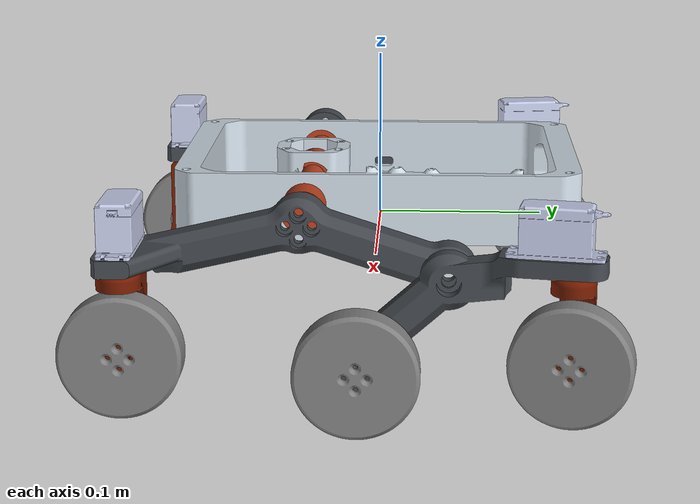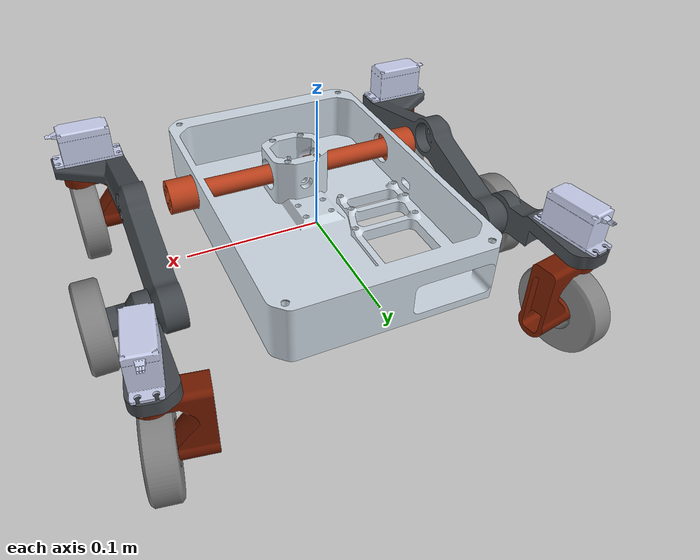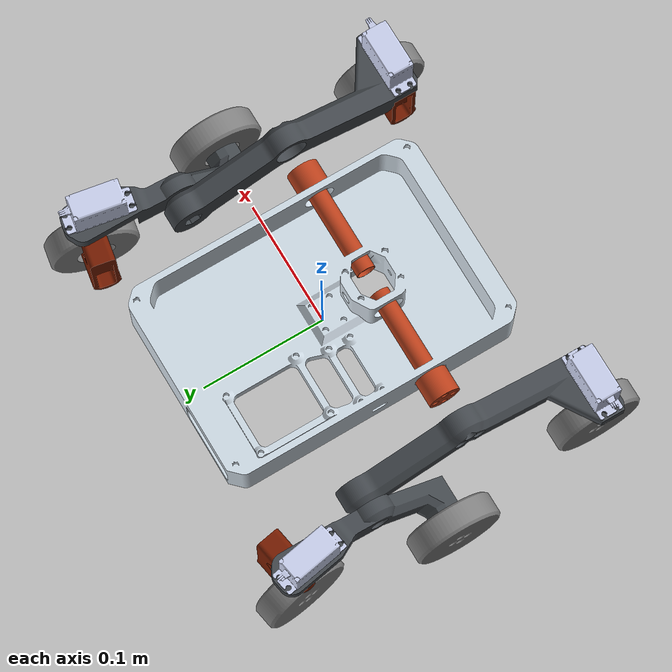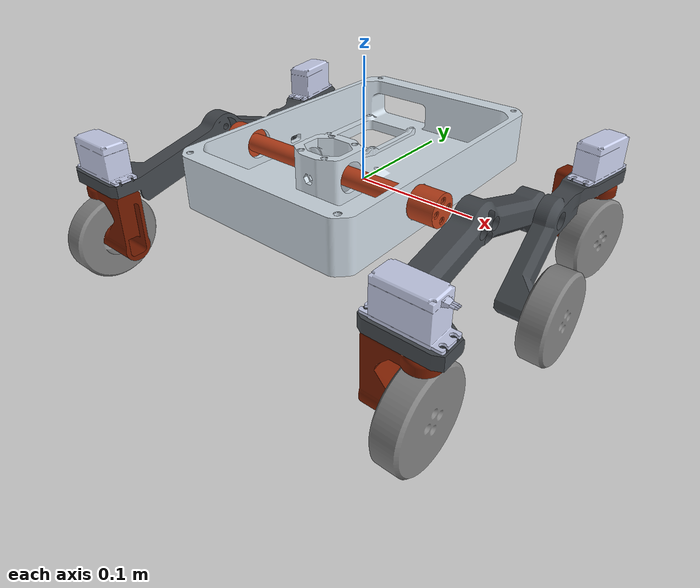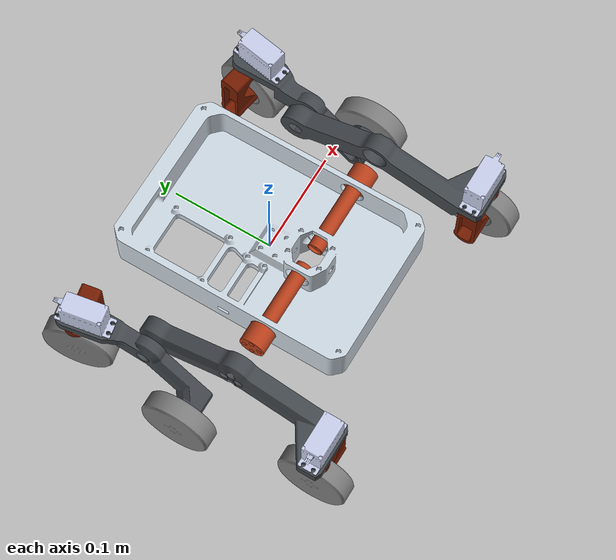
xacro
<?xml version="1.0" ?>
<!-- Generated using onshape-to-robot -->
<!-- Onshape https://cad.onshape.com/documents/31ca51e87164d5a2ae3b11dc/w/1e07aa3f18f08d453ac8b6a1/e/be108145cc25fea61866c58d -->
<robot name="perseverance"
  xmlns:xacro="http://ros.org/wiki/xacro">
  <!-- Link base_link -->
  <link name="base_link">
    <inertial>
      <origin xyz="0.00132088 -0.0106351 0.0110544" rpy="0 0 0"/>
      <mass value="1.16655"/>
      <inertia ixx="0.00718086" ixy="-0.000191247" ixz="-9.44893e-06" iyy="0.00962338" iyz="0.000134967" izz="0.0161498"/>
    </inertial>
    <!-- Part rightbogie -->
    <visual>
      <origin xyz="-0.15 0.0418583 -0.00306575" rpy="0 -0 -1.5708"/>
      <geometry>
        <mesh filename="rightbogie.stl"/>
      </geometry>
      <material name="rightbogie_material">
        <color rgba="0.262745 0.282353 0.301961 1"/>
      </material>
    </visual>
    <collision>
      <origin xyz="-0.15 0.0418583 -0.00306575" rpy="0 -0 -1.5708"/>
      <geometry>
        <mesh filename="rightbogie.stl"/>
      </geometry>
    </collision>
    <!-- Part bevel_0_85m_18t_45deg -->
    <visual>
      <origin xyz="-0.012226 -0.042 0.024" rpy="-0 1.5708 0"/>
      <geometry>
        <mesh filename="bevel_0_85m_18t_45deg.stl"/>
      </geometry>
      <material name="bevel_0_85m_18t_45deg_material">
        <color rgba="0.729412 0.25098 0.105882 1"/>
      </material>
    </visual>
    <collision>
      <origin xyz="-0.012226 -0.042 0.024" rpy="-0 1.5708 0"/>
      <geometry>
        <mesh filename="bevel_0_85m_18t_45deg.stl"/>
      </geometry>
    </collision>
    <!-- Part base_link -->
    <visual>
      <origin xyz="0 0 0" rpy="0 -0 0"/>
      <geometry>
        <mesh filename="base_link.stl"/>
      </geometry>
      <material name="base_link_material">
        <color rgba="0.811765 0.858824 0.898039 1"/>
      </material>
    </visual>
    <collision>
      <origin xyz="0 0 0" rpy="0 -0 0"/>
      <geometry>
        <mesh filename="base_link.stl"/>
      </geometry>
    </collision>
    <!-- Part bevel_0_85m_18t_45deg_2 -->
    <visual>
      <origin xyz="0.012226 -0.042 0.024" rpy="-1.3494e-79 -1.5708 0"/>
      <geometry>
        <mesh filename="bevel_0_85m_18t_45deg.stl"/>
      </geometry>
      <material name="bevel_0_85m_18t_45deg_2_material">
        <color rgba="0.729412 0.25098 0.105882 1"/>
      </material>
    </visual>
    <collision>
      <origin xyz="0.012226 -0.042 0.024" rpy="-1.3494e-79 -1.5708 0"/>
      <geometry>
        <mesh filename="bevel_0_85m_18t_45deg.stl"/>
      </geometry>
    </collision>
    <!-- Part mg995 -->
    <visual>
      <origin xyz="-0.1425 -0.140031 0.043" rpy="3.14159 -0 -3.14159"/>
      <geometry>
        <mesh filename="mg995.stl"/>
      </geometry>
      <material name="mg995_material">
        <color rgba="0.792157 0.819608 0.933333 1"/>
      </material>
    </visual>
    <collision>
      <origin xyz="-0.1425 -0.140031 0.043" rpy="3.14159 -0 -3.14159"/>
      <geometry>
        <mesh filename="mg995.stl"/>
      </geometry>
    </collision>
    <!-- Part mg995_2 -->
    <visual>
      <origin xyz="-0.150764 0.100122 0.0432278" rpy="3.14159 -0 1.74533"/>
      <geometry>
        <mesh filename="mg995.stl"/>
      </geometry>
      <material name="mg995_2_material">
        <color rgba="0.792157 0.819608 0.933333 1"/>
      </material>
    </visual>
    <collision>
      <origin xyz="-0.150764 0.100122 0.0432278" rpy="3.14159 -0 1.74533"/>
      <geometry>
        <mesh filename="mg995.stl"/>
      </geometry>
    </collision>
    <!-- Part mg995_3 -->
    <visual>
      <origin xyz="0.1425 -0.140031 0.043" rpy="3.14159 -0 -2.01228e-16"/>
      <geometry>
        <mesh filename="mg995.stl"/>
      </geometry>
      <material name="mg995_3_material">
        <color rgba="0.792157 0.819608 0.933333 1"/>
      </material>
    </visual>
    <collision>
      <origin xyz="0.1425 -0.140031 0.043" rpy="3.14159 -0 -2.01228e-16"/>
      <geometry>
        <mesh filename="mg995.stl"/>
      </geometry>
    </collision>
    <!-- Part leftrocker -->
    <visual>
      <origin xyz="0.115 -0.042 0.024" rpy="0 -0 -1.5708"/>
      <geometry>
        <mesh filename="leftrocker.stl"/>
      </geometry>
      <material name="leftrocker_material">
        <color rgba="0.262745 0.282353 0.301961 1"/>
      </material>
    </visual>
    <collision>
      <origin xyz="0.115 -0.042 0.024" rpy="0 -0 -1.5708"/>
      <geometry>
        <mesh filename="leftrocker.stl"/>
      </geometry>
    </collision>
    <!-- Part rightrocker -->
    <visual>
      <origin xyz="-0.115 -0.042 0.024" rpy="0 -0 -1.5708"/>
      <geometry>
        <mesh filename="rightrocker.stl"/>
      </geometry>
      <material name="rightrocker_material">
        <color rgba="0.262745 0.282353 0.301961 1"/>
      </material>
    </visual>
    <collision>
      <origin xyz="-0.115 -0.042 0.024" rpy="0 -0 -1.5708"/>
      <geometry>
        <mesh filename="rightrocker.stl"/>
      </geometry>
    </collision>
    <!-- Part mg995_4 -->
    <visual>
      <origin xyz="0.150764 0.100122 0.0432278" rpy="3.14159 -0 1.39626"/>
      <geometry>
        <mesh filename="mg995.stl"/>
      </geometry>
      <material name="mg995_4_material">
        <color rgba="0.792157 0.819608 0.933333 1"/>
      </material>
    </visual>
    <collision>
      <origin xyz="0.150764 0.100122 0.0432278" rpy="3.14159 -0 1.39626"/>
      <geometry>
        <mesh filename="mg995.stl"/>
      </geometry>
    </collision>
    <!-- Part leftbogie -->
    <visual>
      <origin xyz="0.15 0.0418583 -0.00306575" rpy="0 -0 -1.5708"/>
      <geometry>
        <mesh filename="leftbogie.stl"/>
      </geometry>
      <material name="leftbogie_material">
        <color rgba="0.262745 0.282353 0.301961 1"/>
      </material>
    </visual>
    <collision>
      <origin xyz="0.15 0.0418583 -0.00306575" rpy="0 -0 -1.5708"/>
      <geometry>
        <mesh filename="leftbogie.stl"/>
      </geometry>
    </collision>
  </link>
  <!-- Link rearsteeringarm -->
  <link name="rearsteeringarm">
    <inertial>
      <origin xyz="0.0162576 1.99588e-09 -0.0222692" rpy="0 0 0"/>
      <mass value="0.0309807"/>
      <inertia ixx="1.46169e-05" ixy="-1.34476e-13" ixz="1.19558e-06" iyy="1.75736e-05" iyz="1.92805e-12" izz="5.44298e-06"/>
    </inertial>
    <!-- Part rearsteeringarm -->
    <visual>
      <origin xyz="2.77556e-17 2.77556e-17 -0.005" rpy="9.24446e-33 -2.82529e-32 -4.77087e-18"/>
      <geometry>
        <mesh filename="rearsteeringarm.stl"/>
      </geometry>
      <material name="rearsteeringarm_material">
        <color rgba="0.458824 0.105882 0 1"/>
      </material>
    </visual>
    <collision>
      <origin xyz="2.77556e-17 2.77556e-17 -0.005" rpy="9.24446e-33 -2.82529e-32 -4.77087e-18"/>
      <geometry>
        <mesh filename="rearsteeringarm.stl"/>
      </geometry>
    </collision>
  </link>
  <!-- Link wheelhub -->
  <link name="wheelhub">
    <inertial>
      <origin xyz="-3.19312e-19 3.11997e-18 0.00460287" rpy="0 0 0"/>
      <mass value="0.0820664"/>
      <inertia ixx="3.08808e-05" ixy="-3.64091e-55" ixz="-1.42616e-21" iyy="3.08808e-05" iyz="1.12352e-54" izz="5.62507e-05"/>
    </inertial>
    <!-- Part wheelhub -->
    <visual>
      <origin xyz="0 0 -0.005" rpy="-1.5708 1.35456e-17 3.31859e-65"/>
      <geometry>
        <mesh filename="wheelhub.stl"/>
      </geometry>
      <material name="wheelhub_material">
        <color rgba="0.498039 0.498039 0.498039 1"/>
      </material>
    </visual>
    <collision>
      <origin xyz="0 0 -0.005" rpy="-1.5708 1.35456e-17 3.31859e-65"/>
      <geometry>
        <mesh filename="wheelhub.stl"/>
      </geometry>
    </collision>
  </link>
  <!-- Joint from rearsteeringarm to wheelhub -->
  <joint name="bl_wheel" type="continuous">
    <origin xyz="-0.005 -5.55112e-17 -0.0463814" rpy="-1.5708 1.249e-16 -1.5708"/>
    <parent link="rearsteeringarm"/>
    <child link="wheelhub"/>
    <axis xyz="0 0 1"/>
    <limit effort="10" velocity="10"/>
  </joint>
  <!-- Joint from base_link to rearsteeringarm -->
  <joint name="bl_steering" type="revolute">
    <origin xyz="0.1525 0.10997 -0.00127218" rpy="-1.249e-16 4.18641e-16 2.96706"/>
    <parent link="base_link"/>
    <child link="rearsteeringarm"/>
    <axis xyz="0 0 1"/>
    <limit effort="10" velocity="10" lower="-0.610865" upper="0.610865"/>
  </joint>
  <!-- Link rearsteeringarm_2 -->
  <link name="rearsteeringarm_2">
    <inertial>
      <origin xyz="0.0162576 1.99588e-09 -0.0222692" rpy="0 0 0"/>
      <mass value="0.0309807"/>
      <inertia ixx="1.46169e-05" ixy="-1.34476e-13" ixz="1.19558e-06" iyy="1.75736e-05" iyz="1.92805e-12" izz="5.44298e-06"/>
    </inertial>
    <!-- Part rearsteeringarm_2 -->
    <visual>
      <origin xyz="2.77556e-17 2.77556e-17 -0.005" rpy="-8.84344e-75 -0 -7.75341e-18"/>
      <geometry>
        <mesh filename="rearsteeringarm.stl"/>
      </geometry>
      <material name="rearsteeringarm_2_material">
        <color rgba="0.458824 0.105882 0 1"/>
      </material>
    </visual>
    <collision>
      <origin xyz="2.77556e-17 2.77556e-17 -0.005" rpy="-8.84344e-75 -0 -7.75341e-18"/>
      <geometry>
        <mesh filename="rearsteeringarm.stl"/>
      </geometry>
    </collision>
  </link>
  <!-- Link wheelhub_2 -->
  <link name="wheelhub_2">
    <inertial>
      <origin xyz="2.74897e-17 3.11997e-18 0.00460287" rpy="0 0 0"/>
      <mass value="0.0820664"/>
      <inertia ixx="3.08808e-05" ixy="3.5356e-93" ixz="-7.5456e-22" iyy="3.08808e-05" iyz="5.5184e-80" izz="5.62507e-05"/>
    </inertial>
    <!-- Part wheelhub_2 -->
    <visual>
      <origin xyz="2.77556e-17 0 -0.005" rpy="-1.5708 1.93111e-18 9.91647e-75"/>
      <geometry>
        <mesh filename="wheelhub.stl"/>
      </geometry>
      <material name="wheelhub_2_material">
        <color rgba="0.498039 0.498039 0.498039 1"/>
      </material>
    </visual>
    <collision>
      <origin xyz="2.77556e-17 0 -0.005" rpy="-1.5708 1.93111e-18 9.91647e-75"/>
      <geometry>
        <mesh filename="wheelhub.stl"/>
      </geometry>
    </collision>
  </link>
  <!-- Joint from rearsteeringarm_2 to wheelhub_2 -->
  <joint name="br_wheel" type="continuous">
    <origin xyz="-0.005 5.55112e-17 -0.0463814" rpy="1.5708 -0 1.5708"/>
    <parent link="rearsteeringarm_2"/>
    <child link="wheelhub_2"/>
    <axis xyz="0 0 1"/>
    <limit effort="10" velocity="10"/>
  </joint>
  <!-- Joint from base_link to rearsteeringarm_2 -->
  <joint name="br_steering" type="revolute">
    <origin xyz="-0.1525 0.10997 -0.00127218" rpy="4.22436e-59 -1.37735e-59 0.174533"/>
    <parent link="base_link"/>
    <child link="rearsteeringarm_2"/>
    <axis xyz="0 0 1"/>
    <limit effort="10" velocity="10" lower="-0.610865" upper="0.610865"/>
  </joint>
  <!-- Link frontsteeringarm -->
  <link name="frontsteeringarm">
    <inertial>
      <origin xyz="0.0160954 1.24761e-09 -0.0207225" rpy="0 0 0"/>
      <mass value="0.0305721"/>
      <inertia ixx="1.28485e-05" ixy="-1.54012e-13" ixz="1.11198e-06" iyy="1.57606e-05" iyz="1.84212e-12" izz="5.35874e-06"/>
    </inertial>
    <!-- Part frontsteeringarm -->
    <visual>
      <origin xyz="0 0 -0.005" rpy="0 -0 9.24446e-33"/>
      <geometry>
        <mesh filename="frontsteeringarm.stl"/>
      </geometry>
      <material name="frontsteeringarm_material">
        <color rgba="0.458824 0.105882 0 1"/>
      </material>
    </visual>
    <collision>
      <origin xyz="0 0 -0.005" rpy="0 -0 9.24446e-33"/>
      <geometry>
        <mesh filename="frontsteeringarm.stl"/>
      </geometry>
    </collision>
  </link>
  <!-- Link wheelhub_3 -->
  <link name="wheelhub_3">
    <inertial>
      <origin xyz="-1.47254e-19 3.11997e-18 0.00460287" rpy="0 0 0"/>
      <mass value="0.0820664"/>
      <inertia ixx="3.08808e-05" ixy="0" ixz="-5.47239e-37" iyy="3.08808e-05" iyz="0" izz="5.62507e-05"/>
    </inertial>
    <!-- Part wheelhub_3 -->
    <visual>
      <origin xyz="0 0 -0.005" rpy="-1.5708 -2.15704e-32 0"/>
      <geometry>
        <mesh filename="wheelhub.stl"/>
      </geometry>
      <material name="wheelhub_3_material">
        <color rgba="0.498039 0.498039 0.498039 1"/>
      </material>
    </visual>
    <collision>
      <origin xyz="0 0 -0.005" rpy="-1.5708 -2.15704e-32 0"/>
      <geometry>
        <mesh filename="wheelhub.stl"/>
      </geometry>
    </collision>
  </link>
  <!-- Joint from frontsteeringarm to wheelhub_3 -->
  <joint name="fl_wheel" type="continuous">
    <origin xyz="-0.005 -2.77556e-17 -0.0433189" rpy="-1.5708 -0 -1.5708"/>
    <parent link="frontsteeringarm"/>
    <child link="wheelhub_3"/>
    <axis xyz="0 0 1"/>
    <limit effort="10" velocity="10"/>
  </joint>
  <!-- Joint from base_link to frontsteeringarm -->
  <joint name="fl_steering" type="revolute">
    <origin xyz="0.1525 -0.140031 -0.0015" rpy="0 -0 3.14159"/>
    <parent link="base_link"/>
    <child link="frontsteeringarm"/>
    <axis xyz="0 0 1"/>
    <limit effort="10" velocity="10" lower="-0.610865" upper="0.610865"/>
  </joint>
  <!-- Link frontsteeringarm_2 -->
  <link name="frontsteeringarm_2">
    <inertial>
      <origin xyz="-0.0160954 -1.24761e-09 -0.0207225" rpy="0 0 0"/>
      <mass value="0.0305721"/>
      <inertia ixx="1.28485e-05" ixy="-1.54012e-13" ixz="-1.11198e-06" iyy="1.57606e-05" iyz="-1.84212e-12" izz="5.35874e-06"/>
    </inertial>
    <!-- Part frontsteeringarm_2 -->
    <visual>
      <origin xyz="0 2.77556e-17 -0.005" rpy="0 -0 3.14159"/>
      <geometry>
        <mesh filename="frontsteeringarm.stl"/>
      </geometry>
      <material name="frontsteeringarm_2_material">
        <color rgba="0.458824 0.105882 0 1"/>
      </material>
    </visual>
    <collision>
      <origin xyz="0 2.77556e-17 -0.005" rpy="0 -0 3.14159"/>
      <geometry>
        <mesh filename="frontsteeringarm.stl"/>
      </geometry>
    </collision>
  </link>
  <!-- Link wheelhub_4 -->
  <link name="wheelhub_4">
    <inertial>
      <origin xyz="-1.47254e-19 3.11997e-18 0.00460287" rpy="0 0 0"/>
      <mass value="0.0820664"/>
      <inertia ixx="3.08808e-05" ixy="1.05339e-100" ixz="-2.68495e-37" iyy="3.08808e-05" iyz="-3.41845e-68" izz="5.62507e-05"/>
    </inertial>
    <!-- Part wheelhub_4 -->
    <visual>
      <origin xyz="0 0 -0.005" rpy="-1.5708 3.08149e-33 0"/>
      <geometry>
        <mesh filename="wheelhub.stl"/>
      </geometry>
      <material name="wheelhub_4_material">
        <color rgba="0.498039 0.498039 0.498039 1"/>
      </material>
    </visual>
    <collision>
      <origin xyz="0 0 -0.005" rpy="-1.5708 3.08149e-33 0"/>
      <geometry>
        <mesh filename="wheelhub.stl"/>
      </geometry>
    </collision>
  </link>
  <!-- Joint from frontsteeringarm_2 to wheelhub_4 -->
  <joint name="fr_wheel" type="continuous">
    <origin xyz="0.005 2.77556e-17 -0.0433189" rpy="1.5708 3.93984e-31 -1.5708"/>
    <parent link="frontsteeringarm_2"/>
    <child link="wheelhub_4"/>
    <axis xyz="0 0 1"/>
    <limit effort="10" velocity="10"/>
  </joint>
  <!-- Joint from base_link to frontsteeringarm_2 -->
  <joint name="fr_steering" type="revolute">
    <origin xyz="-0.1525 -0.140031 -0.0015" rpy="0 -0 -3.14159"/>
    <parent link="base_link"/>
    <child link="frontsteeringarm_2"/>
    <axis xyz="0 0 1"/>
    <limit effort="10" velocity="10" lower="-0.610865" upper="0.610865"/>
  </joint>
  <!-- Link wheelhub_5 -->
  <link name="wheelhub_5">
    <inertial>
      <origin xyz="-1.47254e-19 3.11997e-18 0.00460287" rpy="0 0 0"/>
      <mass value="0.0820664"/>
      <inertia ixx="3.08808e-05" ixy="0" ixz="6.18563e-36" iyy="3.08808e-05" iyz="0" izz="5.62507e-05"/>
    </inertial>
    <!-- Part wheelhub_5 -->
    <visual>
      <origin xyz="0 0 -0.005" rpy="-1.5708 -4.31408e-32 0"/>
      <geometry>
        <mesh filename="wheelhub.stl"/>
      </geometry>
      <material name="wheelhub_5_material">
        <color rgba="0.498039 0.498039 0.498039 1"/>
      </material>
    </visual>
    <collision>
      <origin xyz="0 0 -0.005" rpy="-1.5708 -4.31408e-32 0"/>
      <geometry>
        <mesh filename="wheelhub.stl"/>
      </geometry>
    </collision>
  </link>
  <!-- Joint from base_link to wheelhub_5 -->
  <joint name="mr_wheel" type="continuous">
    <origin xyz="-0.177 -0.00814152 -0.0476535" rpy="1.5708 -0 1.5708"/>
    <parent link="base_link"/>
    <child link="wheelhub_5"/>
    <axis xyz="0 0 1"/>
    <limit effort="10" velocity="10"/>
  </joint>
  <!-- Link wheelhub_6 -->
  <link name="wheelhub_6">
    <inertial>
      <origin xyz="1.22488e-17 -3.81892e-18 -0.000397125" rpy="0 0 0"/>
      <mass value="0.0820664"/>
      <inertia ixx="3.08808e-05" ixy="0" ixz="9.67354e-20" iyy="3.08808e-05" iyz="0" izz="5.62507e-05"/>
    </inertial>
    <!-- Part wheelhub_6 -->
    <visual>
      <origin xyz="1.73472e-18 -6.93889e-18 -0.01" rpy="-1.5708 -1.11022e-15 0"/>
      <geometry>
        <mesh filename="wheelhub.stl"/>
      </geometry>
      <material name="wheelhub_6_material">
        <color rgba="0.498039 0.498039 0.498039 1"/>
      </material>
    </visual>
    <collision>
      <origin xyz="1.73472e-18 -6.93889e-18 -0.01" rpy="-1.5708 -1.11022e-15 0"/>
      <geometry>
        <mesh filename="wheelhub.stl"/>
      </geometry>
    </collision>
  </link>
  <!-- Joint from base_link to wheelhub_6 -->
  <joint name="ml_wheel" type="continuous">
    <origin xyz="0.172 -0.00814152 -0.0476535" rpy="1.5708 -0 -1.5708"/>
    <parent link="base_link"/>
    <child link="wheelhub_6"/>
    <axis xyz="0 0 1"/>
    <limit effort="10" velocity="10"/>
  </joint>
</robot>
